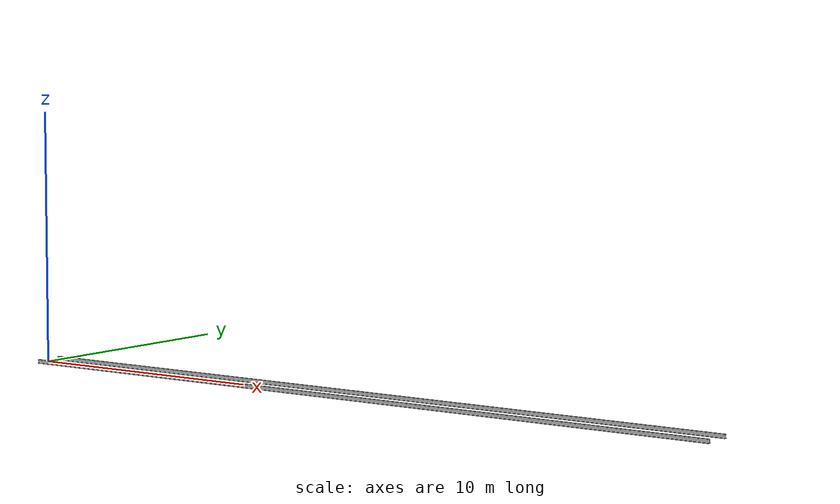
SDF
<?xml version='1.0'?>
<sdf version="1.5">
  <model name="rail">
    <static>true</static>
    <link name="link">
    <collision name="collision">
        <pose>0 0 0 0 0 0</pose>
        <geometry>
            <mesh>
                <uri>model://rail/meshes/rail.stl</uri>
                <scale>0.001 0.001 0.001</scale>
            </mesh>
        </geometry>
    </collision>
    <visual name="visual">
        <pose>0 0 0 0 0 0</pose>
        <geometry>
            <mesh>
                <uri>model://rail/meshes/rail.stl</uri>
                <scale>0.001 0.001 0.001</scale>
            </mesh>
        </geometry>
    </visual>
    </link>
  </model>
</sdf>
